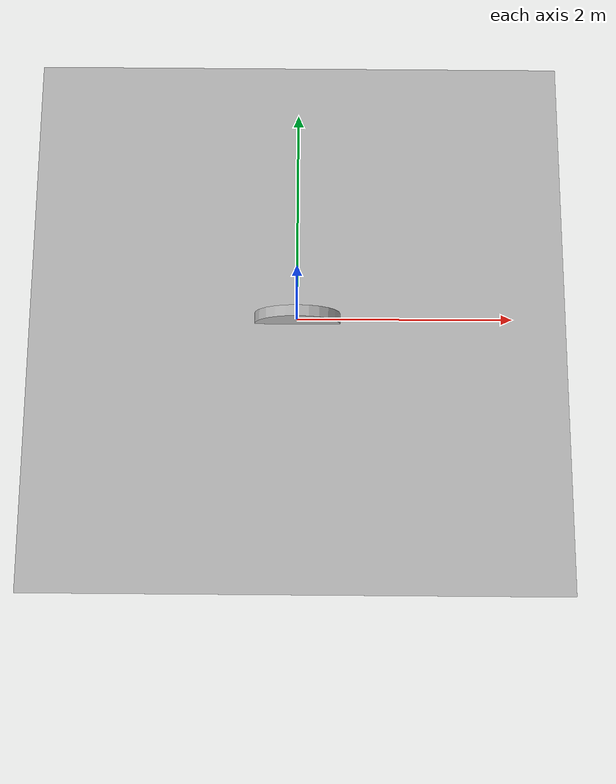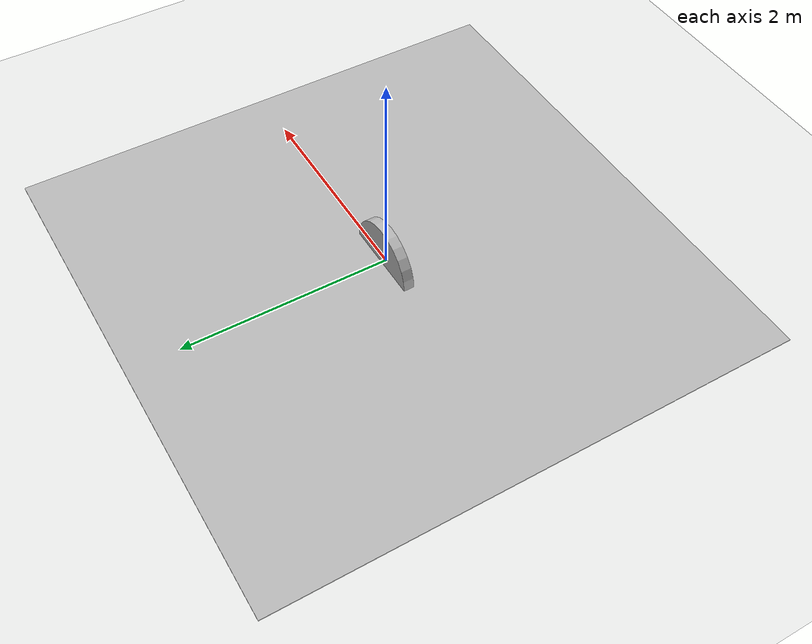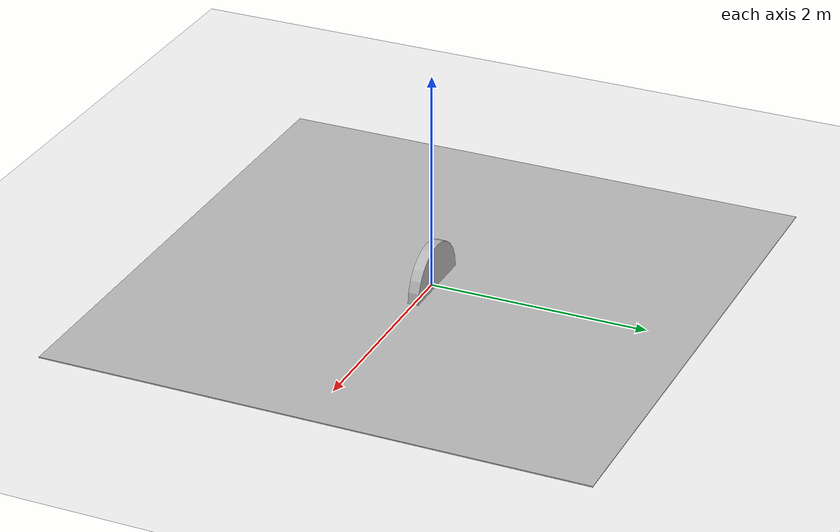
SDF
<sdf version="1.4">
 <world name="default">
  <light name="sun" type="directional">
   <pose>0 0 10 0 -0 0</pose>
   <diffuse>0.8 0.8 0.8 1</diffuse>
   <specular>0.2 0.2 0.2 1</specular>
   <attenuation>
    <range>1000</range>
    <constant>0.9</constant>
    <linear>0.01</linear>
    <quadratic>0.001</quadratic>
   </attenuation>
   <direction>-0.5 0.1 -0.9</direction>
  </light>
  <model name="ground_plane">
   <static>1</static>
   <link name="link">
    <collision name="collision">
     <geometry><plane><normal>0 0 1</normal><size>100 100</size></plane></geometry>
     <surface><friction><ode><mu>100</mu><mu2>50</mu2></ode></friction></surface>
    </collision>
    <visual name="visual">
     <cast_shadows>0</cast_shadows>
     <geometry><plane><normal>0 0 1</normal><size>100 100</size></plane></geometry>
     <material>
      <script><uri>file://media/materials/scripts/gazebo.material</uri><name>Gazebo/Grey</name></script>
     </material>
    </visual>
    <velocity_decay><linear>0</linear><angular>0</angular></velocity_decay>
   </link>
  </model>
  <model name="slope1">
   <static>true</static>
   <link name="link">
    <collision name="collision">
     <geometry><box><size>5 5 0.01</size></box></geometry>
     <surface><friction><ode><mu>100</mu><mu2>50</mu2></ode></friction></surface>
    </collision>
    <visual name="visual">
     <geometry><box><size>5 5 0.01</size></box></geometry>
     <material><script>Gazebo/WoodPallet</script></material>
    </visual>
   </link>
  </model>
  <model name="slope2">
   <static>true</static>
   <link name="link">
    <collision name="collision">
     <geometry><box><size>5 5 0.01</size></box></geometry>
     <surface><friction><ode><mu>100</mu><mu2>50</mu2></ode></friction></surface>
    </collision>
    <visual name="visual">
     <geometry><box><size>5 5 0.01</size></box></geometry>
     <material><script>Gazebo/WoodPallet</script></material>
    </visual>
   </link>
  </model>
  <physics type="ode">
   <max_step_size>0.001</max_step_size>
   <real_time_factor>1</real_time_factor>
   <real_time_update_rate>1000</real_time_update_rate>
   <gravity>0 0 -9.8</gravity>
  </physics>
  <scene><ambient>0.4 0.4 0.4 1</ambient><background>0.7 0.7 0.7 1</background><shadows>1</shadows></scene>
  <spherical_coordinates>
   <surface_model>EARTH_WGS84</surface_model>
   <latitude_deg>0</latitude_deg>
   <longitude_deg>0</longitude_deg>
   <elevation>0</elevation>
   <heading_deg>0</heading_deg>
  </spherical_coordinates>
  <model name="robot">
   <link name="base_link">
    <inertial>
     <pose>0 0 0.8 0 0 0</pose>
     <mass>20</mass>
     <inertia><ixx>1.0</ixx><iyy>1.0</iyy><izz>1.0</izz><ixy>0</ixy><ixz>0</ixz><iyz>0</iyz></inertia>
    </inertial>
    <collision name="collision">
     <pose>0 0 0 0 1.5707 1.5707</pose>
     <geometry><cylinder><radius>0.4</radius><length>0.1</length></cylinder></geometry>
    </collision>
    <visual name="visual">
     <pose>0 0 0 0 1.5707 1.5707</pose>
     <geometry><cylinder><radius>0.4</radius><length>0.1</length></cylinder></geometry>
    </visual>
    <sensor name="sensor_ray" type="ray">
     <pose>0.4 0 0 0 0 0</pose>
     <visualize>true</visualize>
     <ray>
      <scan display="true">
       <horizontal>
        <samples>641</samples>
        <resolution>1.0</resolution>
        <min_angle>-1.0</min_angle>
        <max_angle>1.0</max_angle>
       </horizontal>
      </scan>
      <range><min>0.15</min><max>30.0</max></range>
     </ray>
     <plugin name="plugin_1" filename="libgazebo_ros_laser.so">
      <gaussianNoise>0.005</gaussianNoise>
      <alwaysOn>true</alwaysOn>
      <updateRate>20</updateRate>
      <topicName>base_scan</topicName>
      <frameName>base_link</frameName>
     </plugin>
     <always_on>true</always_on>
     <update_rate>2.0</update_rate>
    </sensor>
   </link>
   <static>0</static>
   <plugin name="object_controller" filename="libgazebo_ros_planar_move.so">
    <commandTopic>cmd_vel</commandTopic>
    <odometryTopic>odom</odometryTopic>
    <odometryFrame>odom</odometryFrame>
    <odometryRate>20.0</odometryRate>
    <robotBaseFrame>chassis</robotBaseFrame>
    <joint_state_idel_sec>3.0</joint_state_idel_sec>
    <recover_roll_velocity_p_gain>10.0</recover_roll_velocity_p_gain>
    <recover_pitch_velocity_p_gain>10.0</recover_pitch_velocity_p_gain>
    <recover_z_velocity_p_gain>50.0</recover_z_velocity_p_gain>
    <x_velocity_limit_max>0.5</x_velocity_limit_max>
    <x_velocity_limit_min>-0.5</x_velocity_limit_min>
    <y_velocity_limit_max>0.5</y_velocity_limit_max>
    <y_velocity_limit_min>-0.5</y_velocity_limit_min>
    <rot_velocity_limit_max>0.5</rot_velocity_limit_max>
    <rot_velocity_limit_min>-0.5</rot_velocity_limit_min>
    <x_acceleration_limit_max>1.5</x_acceleration_limit_max>
    <x_acceleration_limit_min>-1.5</x_acceleration_limit_min>
    <y_acceleration_limit_max>1.0</y_acceleration_limit_max>
    <y_acceleration_limit_min>-1.0</y_acceleration_limit_min>
    <rot_acceleration_limit_max>0.5</rot_acceleration_limit_max>
    <rot_acceleration_limit_min>-0.5</rot_acceleration_limit_min>
    <tilt_angle_par_max_velocity>0</tilt_angle_par_max_velocity>
   </plugin>
  </model>
 </world>
</sdf>
